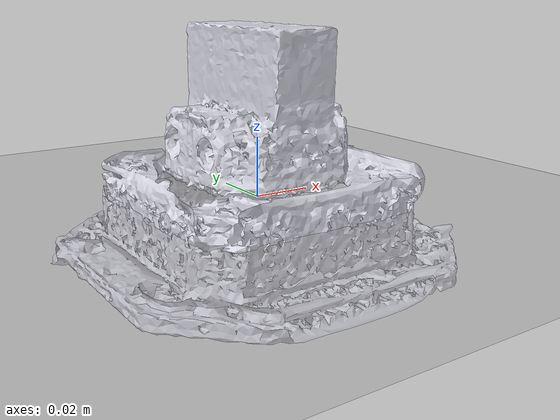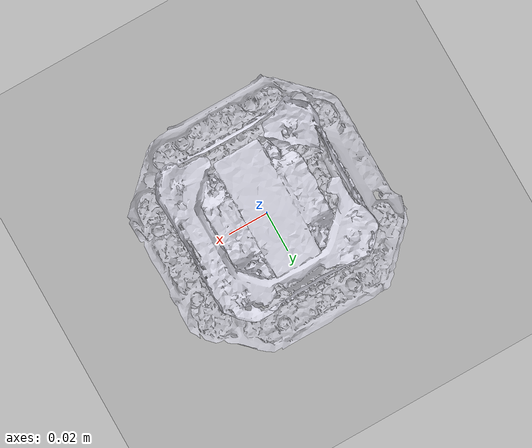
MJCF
<?xml version='1.0' encoding='UTF-8'?>
<mujoco model="tai_object">
  <compiler angle="degree" coordinate="local" inertiafromgeom="false" meshdir="meshes"/>
  <option gravity="0 0 -9.81" integrator="implicitfast"/>
  <default>
    <geom friction="0.8 0.1 0.1" condim="3"/>
  </default>
  <asset>
    <mesh name="visual_mesh" file="visual.obj" scale="1 1 1"/>
    <mesh name="collision_mesh" file="collision.obj" scale="1 1 1"/>
    <texture name="grid" type="2d" builtin="checker" width="512" height="512"/>
    <material name="grid_mat" texture="grid" texrepeat="8 8" reflectance="0.1"/>
  </asset>
  <worldbody>
    <geom name="floor" type="plane" size="2 2 0.05" pos="0 0 0" material="grid_mat"/>
    <light name="main_light" directional="true" diffuse="0.8 0.8 0.8" specular="0.2 0.2 0.2" pos="0 0 2" dir="0 0 -1"/>
    <camera name="track" mode="trackcom" pos="0.6 -0.6 0.35" xyaxes="0.7 0.7 0 -0.4 0.4 0.8"/>
    <body name="tai_object_body" pos="0 0 0">
      <freejoint name="root"/>
      <inertial pos="0 0 0" mass="0.5" diaginertia="0.000217416021 0.000217416021 0.0003"/>
      <geom name="visual" type="mesh" mesh="visual_mesh" contype="0" conaffinity="0" rgba="0.85 0.85 0.9 1"/>
      <geom name="collision_mesh" type="mesh" mesh="collision_mesh" rgba="0.2 0.6 0.9 0.35" group="3"/>
    </body>
  </worldbody>
</mujoco>
